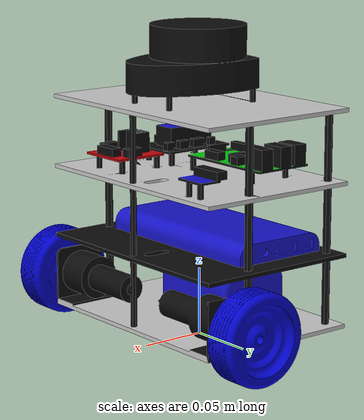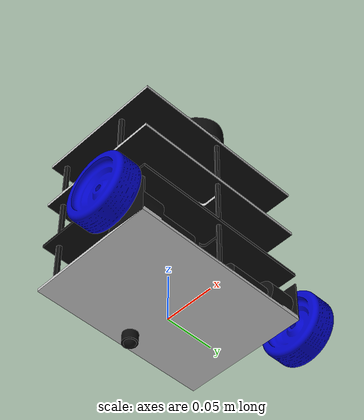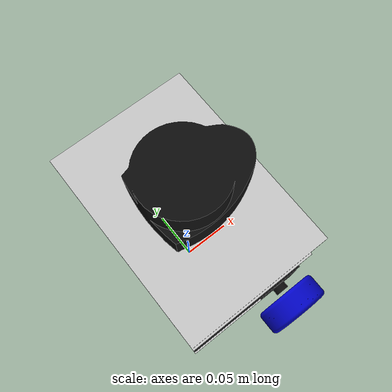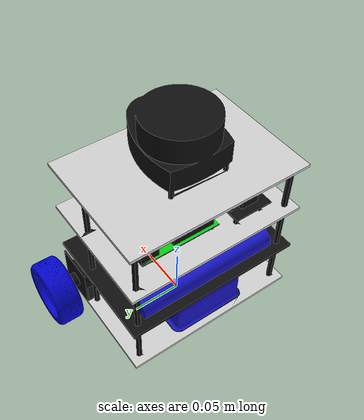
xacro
<?xml version="1.0"?>
<robot name="jerry" xmlns:xacro="http://www.ros.org/wiki/xacro">

    <xacro:macro name="default_origin">
        <origin xyz="0 0 0" rpy="0 0 0"/>
    </xacro:macro>

    <xacro:macro name="default_inertia">
        <inertial>
            <xacro:default_origin />
            <mass value="1.0"/>
            <inertia ixx="0.0036" ixy="0.0" ixz="0.0" iyy="0.0036" iyz="0.0" izz="0.0066"/>
        </inertial>
    </xacro:macro>

    <link name="base_footprint"/>

    <link name="base_link">
        <xacro:default_inertia />
        <visual name="">
            <origin xyz="0.0 0.0 0.0" rpy="0.0 0.0 0.0"/>
            <geometry>
                <mesh filename="package://jerry_bot_description/meshes/jerry_base.dae"/>
            </geometry>
        </visual>
        <collision>
            <origin xyz="0.0 0.0 0.112" rpy="0.0 0.0 0.0"/>
            <geometry>
                <box size="0.13 0.185 0.22"/>
            </geometry>
        </collision>
    </link>

    <joint name="robot_footprint_joint" type="fixed">
        <origin xyz="0.0 0.0 0.0" rpy="0.0 0.0 0.0"/>
        <parent link="base_footprint"/>
        <child link="base_link" />
    </joint>

    <link name="left_wheel_link">
        <xacro:default_inertia />
        <visual name="">
            <xacro:default_origin />
            <geometry>
                <mesh filename="package://jerry_bot_description/meshes/wheel_blue.dae"/>
            </geometry>
        </visual>
        <collision>
            <xacro:default_origin />
            <geometry>
                <cylinder radius="0.033" length="0.025"/>
            </geometry>
        </collision>
    </link>

    <joint name="left_wheel_joint" type="continuous">
        <origin xyz="0.044 0.1135 0.033" rpy="-1.5708 0.0 0.0"/>
        <parent link="base_link"/>
        <child link="left_wheel_link" />
        <axis xyz="0 0 1"/>
    </joint>

    <link name="right_wheel_link">
        <xacro:default_inertia />
        <visual name="">
            <xacro:default_origin />
            <geometry>
                <mesh filename="package://jerry_bot_description/meshes/wheel_blue.dae"/>
            </geometry>
        </visual>
        <collision>
            <xacro:default_origin />
            <geometry>
                <cylinder radius="0.033" length="0.025"/>
            </geometry>
        </collision>
    </link>

    <joint name="right_wheel_joint" type="continuous">
        <origin xyz="0.044 -0.1135 0.033" rpy="-1.5708 0.0 0.0"/>
        <parent link="base_link"/>
        <child link="right_wheel_link" />
        <axis xyz="0 0 1"/>
    </joint>

    <link name="imu_link"/>

    <joint name="imu_joint" type="fixed">
        <parent link="base_link"/>
        <child link="imu_link"/>
        <origin xyz="0.05 0.06 0.135" rpy="0 0 0"/>
    </joint>

    <link name="camera_link"/>

    <joint name="cam_joint" type="fixed">
        <parent link="base_link"/>
        <child link="camera_link"/>
        <origin xyz="0.05 0.0 0.15" rpy="0 0 0"/>
    </joint>

    <link name="lidar_link"/>

    <joint name="lidar_joint" type="fixed">
        <origin xyz="0.0 0.0 0.22" rpy="0.0 0.0 0.0"/>
        <parent link="base_link"/>
        <child link="lidar_link" />
    </joint>

</robot>
